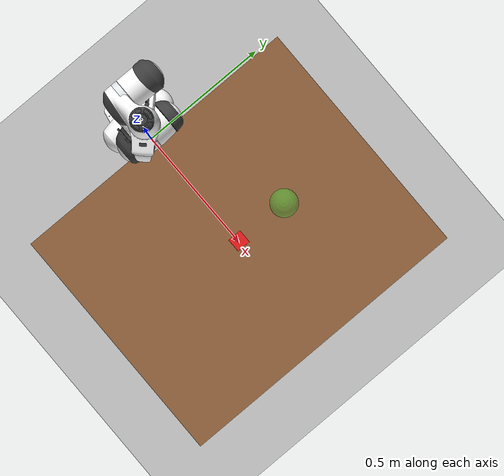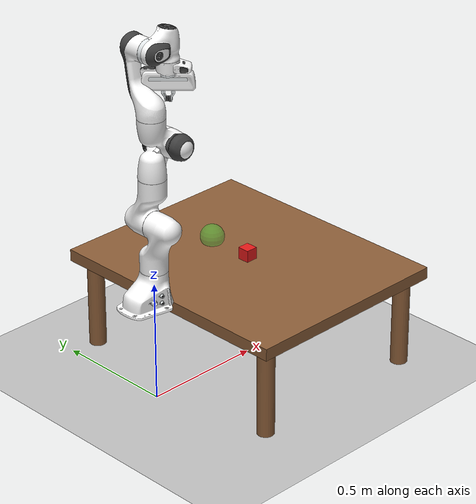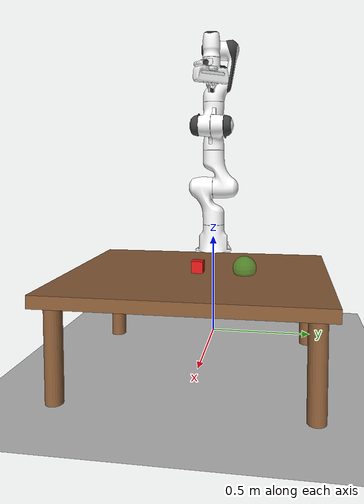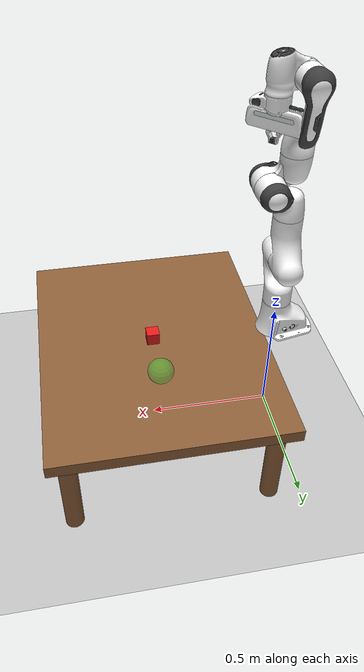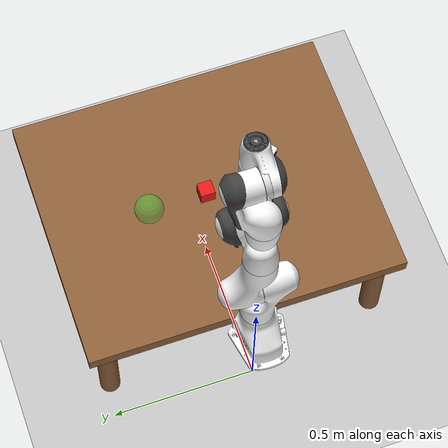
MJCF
<mujoco model="tabletop_pick_place">
  <compiler angle="radian" meshdir="../robots/panda/assets/" autolimits="true"/>

  <option timestep="0.001" gravity="0 0 -9.81" integrator="implicitfast">
    <flag warmstart="enable"/>
  </option>

  <default>
    <default class="panda">
      <material specular="0.5" shininess="0.25"/>
      <joint armature="0.1" damping="1" axis="0 0 1" range="-2.8973 2.8973"/>
      <general dyntype="none" biastype="affine" ctrlrange="-2.8973 2.8973" forcerange="-87 87"/>
      <default class="finger">
        <joint axis="0 1 0" type="slide" range="0 0.04"/>
      </default>
      <default class="visual">
        <geom type="mesh" contype="0" conaffinity="0" group="2"/>
      </default>
      <default class="collision">
        <geom type="mesh" group="3"/>
        <default class="fingertip_pad_collision_1">
          <geom type="box" size="0.0085 0.004 0.0085" pos="0 0.0055 0.0445"/>
        </default>
        <default class="fingertip_pad_collision_2">
          <geom type="box" size="0.003 0.002 0.003" pos="0.0055 0.002 0.05"/>
        </default>
        <default class="fingertip_pad_collision_3">
          <geom type="box" size="0.003 0.002 0.003" pos="-0.0055 0.002 0.05"/>
        </default>
        <default class="fingertip_pad_collision_4">
          <geom type="box" size="0.003 0.002 0.0035" pos="0.0055 0.002 0.0395"/>
        </default>
        <default class="fingertip_pad_collision_5">
          <geom type="box" size="0.003 0.002 0.0035" pos="-0.0055 0.002 0.0395"/>
        </default>
      </default>
    </default>
  </default>

  <asset>
    <!-- Scene textures and materials -->
    <texture name="grid" type="2d" builtin="checker" rgb1="0.85 0.85 0.85" rgb2="0.65 0.65 0.65" width="512" height="512"/>
    <material name="grid_mat" texture="grid" texrepeat="8 8" texuniform="true" reflectance="0.1"/>
    <texture name="wood" type="2d" builtin="flat" rgb1="0.55 0.37 0.22" rgb2="0.65 0.45 0.28" width="512" height="512" mark="random" markrgb="0.60 0.40 0.25"/>
    <material name="table_mat" texture="wood" texrepeat="3 3" texuniform="true" reflectance="0.3" specular="0.4" shininess="0.6"/>
    <material name="cube_mat" rgba="0.9 0.1 0.1 1" reflectance="0.5" specular="0.8" shininess="0.9"/>
    <material name="target_mat" rgba="0.2 0.9 0.2 0.4" specular="0.1"/>

    <!-- Panda materials -->
    <material class="panda" name="white" rgba="1 1 1 1"/>
    <material class="panda" name="off_white" rgba="0.901961 0.921569 0.929412 1"/>
    <material class="panda" name="black" rgba="0.25 0.25 0.25 1"/>
    <material class="panda" name="green" rgba="0 1 0 1"/>
    <material class="panda" name="light_blue" rgba="0.039216 0.541176 0.780392 1"/>

    <!-- Collision meshes -->
    <mesh name="link0_c" file="link0.stl"/>
    <mesh name="link1_c" file="link1.stl"/>
    <mesh name="link2_c" file="link2.stl"/>
    <mesh name="link3_c" file="link3.stl"/>
    <mesh name="link4_c" file="link4.stl"/>
    <mesh name="link5_c0" file="link5_collision_0.obj"/>
    <mesh name="link5_c1" file="link5_collision_1.obj"/>
    <mesh name="link5_c2" file="link5_collision_2.obj"/>
    <mesh name="link6_c" file="link6.stl"/>
    <mesh name="link7_c" file="link7.stl"/>
    <mesh name="hand_c" file="hand.stl"/>

    <!-- Visual meshes -->
    <mesh file="link0_0.obj"/>
    <mesh file="link0_1.obj"/>
    <mesh file="link0_2.obj"/>
    <mesh file="link0_3.obj"/>
    <mesh file="link0_4.obj"/>
    <mesh file="link0_5.obj"/>
    <mesh file="link0_7.obj"/>
    <mesh file="link0_8.obj"/>
    <mesh file="link0_9.obj"/>
    <mesh file="link0_10.obj"/>
    <mesh file="link0_11.obj"/>
    <mesh file="link1.obj"/>
    <mesh file="link2.obj"/>
    <mesh file="link3_0.obj"/>
    <mesh file="link3_1.obj"/>
    <mesh file="link3_2.obj"/>
    <mesh file="link3_3.obj"/>
    <mesh file="link4_0.obj"/>
    <mesh file="link4_1.obj"/>
    <mesh file="link4_2.obj"/>
    <mesh file="link4_3.obj"/>
    <mesh file="link5_0.obj"/>
    <mesh file="link5_1.obj"/>
    <mesh file="link5_2.obj"/>
    <mesh file="link6_0.obj"/>
    <mesh file="link6_1.obj"/>
    <mesh file="link6_2.obj"/>
    <mesh file="link6_3.obj"/>
    <mesh file="link6_4.obj"/>
    <mesh file="link6_5.obj"/>
    <mesh file="link6_6.obj"/>
    <mesh file="link6_7.obj"/>
    <mesh file="link6_8.obj"/>
    <mesh file="link6_9.obj"/>
    <mesh file="link6_10.obj"/>
    <mesh file="link6_11.obj"/>
    <mesh file="link6_12.obj"/>
    <mesh file="link6_13.obj"/>
    <mesh file="link6_14.obj"/>
    <mesh file="link6_15.obj"/>
    <mesh file="link6_16.obj"/>
    <mesh file="link7_0.obj"/>
    <mesh file="link7_1.obj"/>
    <mesh file="link7_2.obj"/>
    <mesh file="link7_3.obj"/>
    <mesh file="link7_4.obj"/>
    <mesh file="link7_5.obj"/>
    <mesh file="link7_6.obj"/>
    <mesh file="link7_7.obj"/>
    <mesh file="hand_0.obj"/>
    <mesh file="hand_1.obj"/>
    <mesh file="hand_2.obj"/>
    <mesh file="hand_3.obj"/>
    <mesh file="hand_4.obj"/>
    <mesh file="finger_0.obj"/>
    <mesh file="finger_1.obj"/>
  </asset>

  <worldbody>
    <!-- Ground plane -->
    <geom name="ground" type="plane" size="2 2 0.01" material="grid_mat"/>

    <!-- 3-point lighting -->
    <!-- Key light: warm, strong, from upper right -->
    <light name="key_light" directional="true" pos="1.0 -0.5 3.0" dir="-0.3 0.2 -1" diffuse="1.0 0.95 0.85" specular="0.6 0.55 0.5" castshadow="true"/>
    <!-- Fill light: cool, softer, from upper left -->
    <light name="fill_light" directional="true" pos="-1.0 1.0 2.0" dir="0.3 -0.3 -0.8" diffuse="0.35 0.4 0.5" specular="0.1 0.1 0.15"/>
    <!-- Rim/back light: behind and above, for edge definition -->
    <light name="rim_light" directional="true" pos="-0.5 -1.0 2.5" dir="0.2 0.4 -0.8" diffuse="0.3 0.3 0.35" specular="0.2 0.2 0.25"/>

    <!-- Table: larger, wood-colored with reflective material -->
    <body name="table" pos="0.5 0.0 0.0">
      <geom name="table_top" type="box" size="0.45 0.55 0.025" pos="0 0 0.4" material="table_mat" mass="100"/>
      <geom name="table_leg1" type="cylinder" size="0.035" fromto="-0.38 -0.48 0.0 -0.38 -0.48 0.375" material="table_mat"/>
      <geom name="table_leg2" type="cylinder" size="0.035" fromto="0.38 -0.48 0.0  0.38 -0.48 0.375" material="table_mat"/>
      <geom name="table_leg3" type="cylinder" size="0.035" fromto="-0.38  0.48 0.0 -0.38  0.48 0.375" material="table_mat"/>
      <geom name="table_leg4" type="cylinder" size="0.035" fromto="0.38  0.48 0.0  0.38  0.48 0.375" material="table_mat"/>
    </body>

    <!-- Franka Panda Arm (menagerie mesh model, mounted on table level) -->
    <body name="link0" pos="0.0 0.0 0.425" childclass="panda">
      <inertial mass="0.629769" pos="-0.041018 -0.00014 0.049974"
        fullinertia="0.00315 0.00388 0.004285 8.2904e-7 0.00015 8.2299e-6"/>
      <geom mesh="link0_0" material="off_white" class="visual"/>
      <geom mesh="link0_1" material="black" class="visual"/>
      <geom mesh="link0_2" material="off_white" class="visual"/>
      <geom mesh="link0_3" material="black" class="visual"/>
      <geom mesh="link0_4" material="off_white" class="visual"/>
      <geom mesh="link0_5" material="black" class="visual"/>
      <geom mesh="link0_7" material="white" class="visual"/>
      <geom mesh="link0_8" material="white" class="visual"/>
      <geom mesh="link0_9" material="black" class="visual"/>
      <geom mesh="link0_10" material="off_white" class="visual"/>
      <geom mesh="link0_11" material="white" class="visual"/>
      <geom mesh="link0_c" class="collision"/>
      <body name="link1" pos="0 0 0.333">
        <inertial mass="4.970684" pos="0.003875 0.002081 -0.04762"
          fullinertia="0.70337 0.70661 0.0091170 -0.00013900 0.0067720 0.019169"/>
        <joint name="joint1"/>
        <geom material="white" mesh="link1" class="visual"/>
        <geom mesh="link1_c" class="collision"/>
        <body name="link2" quat="1 -1 0 0">
          <inertial mass="0.646926" pos="-0.003141 -0.02872 0.003495"
            fullinertia="0.0079620 2.8110e-2 2.5995e-2 -3.925e-3 1.0254e-2 7.04e-4"/>
          <joint name="joint2" range="-1.7628 1.7628"/>
          <geom material="white" mesh="link2" class="visual"/>
          <geom mesh="link2_c" class="collision"/>
          <body name="link3" pos="0 -0.316 0" quat="1 1 0 0">
            <joint name="joint3"/>
            <inertial mass="3.228604" pos="2.7518e-2 3.9252e-2 -6.6502e-2"
              fullinertia="3.7242e-2 3.6155e-2 1.083e-2 -4.761e-3 -1.1396e-2 -1.2805e-2"/>
            <geom mesh="link3_0" material="white" class="visual"/>
            <geom mesh="link3_1" material="white" class="visual"/>
            <geom mesh="link3_2" material="white" class="visual"/>
            <geom mesh="link3_3" material="black" class="visual"/>
            <geom mesh="link3_c" class="collision"/>
            <body name="link4" pos="0.0825 0 0" quat="1 1 0 0">
              <inertial mass="3.587895" pos="-5.317e-2 1.04419e-1 2.7454e-2"
                fullinertia="2.5853e-2 1.9552e-2 2.8323e-2 7.796e-3 -1.332e-3 8.641e-3"/>
              <joint name="joint4" range="-3.0718 -0.0698"/>
              <geom mesh="link4_0" material="white" class="visual"/>
              <geom mesh="link4_1" material="white" class="visual"/>
              <geom mesh="link4_2" material="black" class="visual"/>
              <geom mesh="link4_3" material="white" class="visual"/>
              <geom mesh="link4_c" class="collision"/>
              <body name="link5" pos="-0.0825 0.384 0" quat="1 -1 0 0">
                <inertial mass="1.225946" pos="-1.1953e-2 4.1065e-2 -3.8437e-2"
                  fullinertia="3.5549e-2 2.9474e-2 8.627e-3 -2.117e-3 -4.037e-3 2.29e-4"/>
                <joint name="joint5"/>
                <geom mesh="link5_0" material="black" class="visual"/>
                <geom mesh="link5_1" material="white" class="visual"/>
                <geom mesh="link5_2" material="white" class="visual"/>
                <geom mesh="link5_c0" class="collision"/>
                <geom mesh="link5_c1" class="collision"/>
                <geom mesh="link5_c2" class="collision"/>
                <body name="link6" quat="1 1 0 0">
                  <inertial mass="1.666555" pos="6.0149e-2 -1.4117e-2 -1.0517e-2"
                    fullinertia="1.964e-3 4.354e-3 5.433e-3 1.09e-4 -1.158e-3 3.41e-4"/>
                  <joint name="joint6" range="-0.0175 3.7525"/>
                  <geom mesh="link6_0" material="off_white" class="visual"/>
                  <geom mesh="link6_1" material="white" class="visual"/>
                  <geom mesh="link6_2" material="black" class="visual"/>
                  <geom mesh="link6_3" material="white" class="visual"/>
                  <geom mesh="link6_4" material="white" class="visual"/>
                  <geom mesh="link6_5" material="white" class="visual"/>
                  <geom mesh="link6_6" material="white" class="visual"/>
                  <geom mesh="link6_7" material="light_blue" class="visual"/>
                  <geom mesh="link6_8" material="light_blue" class="visual"/>
                  <geom mesh="link6_9" material="black" class="visual"/>
                  <geom mesh="link6_10" material="black" class="visual"/>
                  <geom mesh="link6_11" material="white" class="visual"/>
                  <geom mesh="link6_12" material="green" class="visual"/>
                  <geom mesh="link6_13" material="white" class="visual"/>
                  <geom mesh="link6_14" material="black" class="visual"/>
                  <geom mesh="link6_15" material="black" class="visual"/>
                  <geom mesh="link6_16" material="white" class="visual"/>
                  <geom mesh="link6_c" class="collision"/>
                  <body name="link7" pos="0.088 0 0" quat="1 1 0 0">
                    <inertial mass="7.35522e-01" pos="1.0517e-2 -4.252e-3 6.1597e-2"
                      fullinertia="1.2516e-2 1.0027e-2 4.815e-3 -4.28e-4 -1.196e-3 -7.41e-4"/>
                    <joint name="joint7"/>
                    <geom mesh="link7_0" material="white" class="visual"/>
                    <geom mesh="link7_1" material="black" class="visual"/>
                    <geom mesh="link7_2" material="black" class="visual"/>
                    <geom mesh="link7_3" material="black" class="visual"/>
                    <geom mesh="link7_4" material="black" class="visual"/>
                    <geom mesh="link7_5" material="black" class="visual"/>
                    <geom mesh="link7_6" material="black" class="visual"/>
                    <geom mesh="link7_7" material="white" class="visual"/>
                    <geom mesh="link7_c" class="collision"/>
                    <body name="panda_hand" pos="0 0 0.107" quat="0.9238795 0 0 -0.3826834">
                      <inertial mass="0.73" pos="-0.01 0 0.03" diaginertia="0.001 0.0025 0.0017"/>
                      <geom mesh="hand_0" material="off_white" class="visual"/>
                      <geom mesh="hand_1" material="black" class="visual"/>
                      <geom mesh="hand_2" material="black" class="visual"/>
                      <geom mesh="hand_3" material="white" class="visual"/>
                      <geom mesh="hand_4" material="off_white" class="visual"/>
                      <geom mesh="hand_c" class="collision"/>

                      <!-- Wrist camera -->
                      <camera name="wrist" pos="0.0 0.0 0.08" xyaxes="0 -1 0 0.5 0 1" fovy="60"/>

                      <body name="left_finger" pos="0 0 0.0584">
                        <inertial mass="0.015" pos="0 0 0" diaginertia="2.375e-6 2.375e-6 7.5e-7"/>
                        <joint name="finger_joint1" class="finger"/>
                        <geom mesh="finger_0" material="off_white" class="visual"/>
                        <geom mesh="finger_1" material="black" class="visual"/>
                        <geom mesh="finger_0" class="collision"/>
                        <geom class="fingertip_pad_collision_1"/>
                        <geom class="fingertip_pad_collision_2"/>
                        <geom class="fingertip_pad_collision_3"/>
                        <geom class="fingertip_pad_collision_4"/>
                        <geom class="fingertip_pad_collision_5"/>
                      </body>
                      <body name="right_finger" pos="0 0 0.0584" quat="0 0 0 1">
                        <inertial mass="0.015" pos="0 0 0" diaginertia="2.375e-6 2.375e-6 7.5e-7"/>
                        <joint name="finger_joint2" class="finger"/>
                        <geom mesh="finger_0" material="off_white" class="visual"/>
                        <geom mesh="finger_1" material="black" class="visual"/>
                        <geom mesh="finger_0" class="collision"/>
                        <geom class="fingertip_pad_collision_1"/>
                        <geom class="fingertip_pad_collision_2"/>
                        <geom class="fingertip_pad_collision_3"/>
                        <geom class="fingertip_pad_collision_4"/>
                        <geom class="fingertip_pad_collision_5"/>
                      </body>
                    </body>
                  </body>
                </body>
              </body>
            </body>
          </body>
        </body>
      </body>
    </body>

    <!-- Cube (manipulated object): red metallic -->
    <body name="cube" pos="0.5 0.0 0.45">
      <freejoint name="cube_joint"/>
      <geom name="cube_geom" type="box" size="0.025 0.025 0.025" material="cube_mat" mass="0.05" condim="4" friction="1.0 0.02 0.01"/>
    </body>

    <!-- Target marker (visual only): green translucent sphere -->
    <body name="target" pos="0.5 0.2 0.45">
      <geom name="target_geom" type="sphere" size="0.05" material="target_mat" contype="0" conaffinity="0"/>
    </body>

    <!-- 3/4 view camera -->
    <camera name="front" pos="1.5 0.8 1.2" xyaxes="-0.47 0.88 0 -0.36 -0.19 0.91" fovy="45"/>
  </worldbody>

  <contact>
    <exclude body1="link0" body2="link1"/>
  </contact>

  <!-- 9 actuators: 7 arm joints + 2 gripper joints (separate) -->
  <actuator>
    <general class="panda" name="actuator1" joint="joint1" gainprm="4500" biasprm="0 -4500 -450"/>
    <general class="panda" name="actuator2" joint="joint2" gainprm="4500" biasprm="0 -4500 -450"
      ctrlrange="-1.7628 1.7628"/>
    <general class="panda" name="actuator3" joint="joint3" gainprm="3500" biasprm="0 -3500 -350"/>
    <general class="panda" name="actuator4" joint="joint4" gainprm="3500" biasprm="0 -3500 -350"
      ctrlrange="-3.0718 -0.0698"/>
    <general class="panda" name="actuator5" joint="joint5" gainprm="2000" biasprm="0 -2000 -200" forcerange="-12 12"/>
    <general class="panda" name="actuator6" joint="joint6" gainprm="2000" biasprm="0 -2000 -200" forcerange="-12 12"
      ctrlrange="-0.0175 3.7525"/>
    <general class="panda" name="actuator7" joint="joint7" gainprm="2000" biasprm="0 -2000 -200" forcerange="-12 12"/>
    <general class="panda" name="finger_actuator1" joint="finger_joint1" gainprm="100" biasprm="0 -100 -10"
      ctrlrange="0 0.04" forcerange="-100 100"/>
    <general class="panda" name="finger_actuator2" joint="finger_joint2" gainprm="100" biasprm="0 -100 -10"
      ctrlrange="0 0.04" forcerange="-100 100"/>
  </actuator>

  <keyframe>
    <key name="home" qpos="0 0 0 -1.57079 0 1.57079 -0.7853 0.04 0.04 0.5 0.0 0.45 1 0 0 0"
         ctrl="0 0 0 -1.57079 0 1.57079 -0.7853 0.04 0.04"/>
  </keyframe>
</mujoco>
